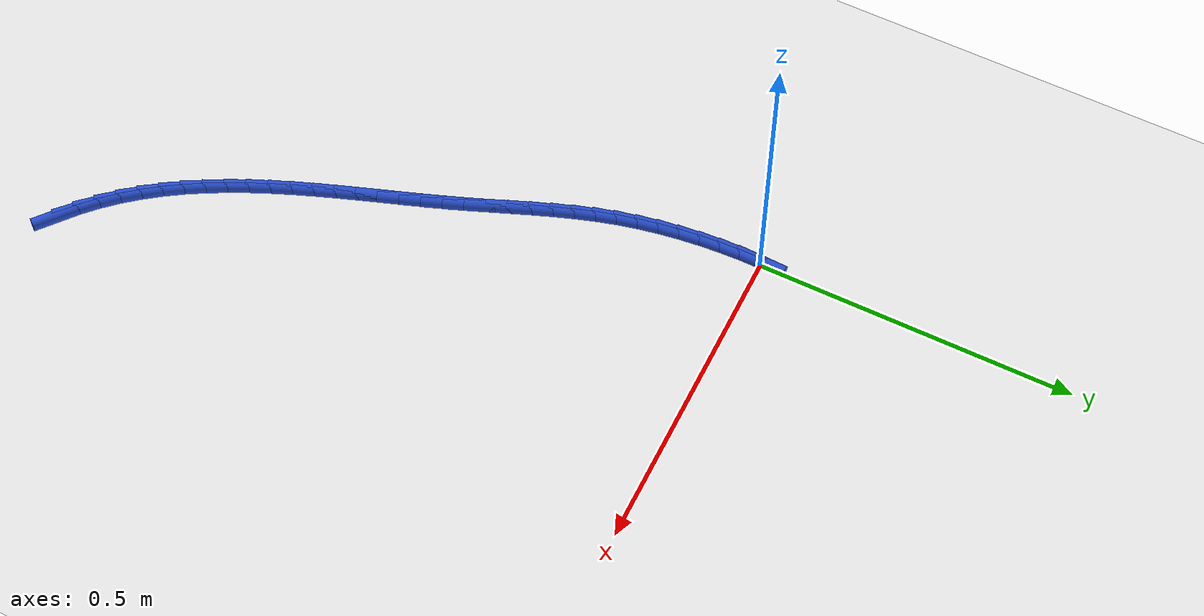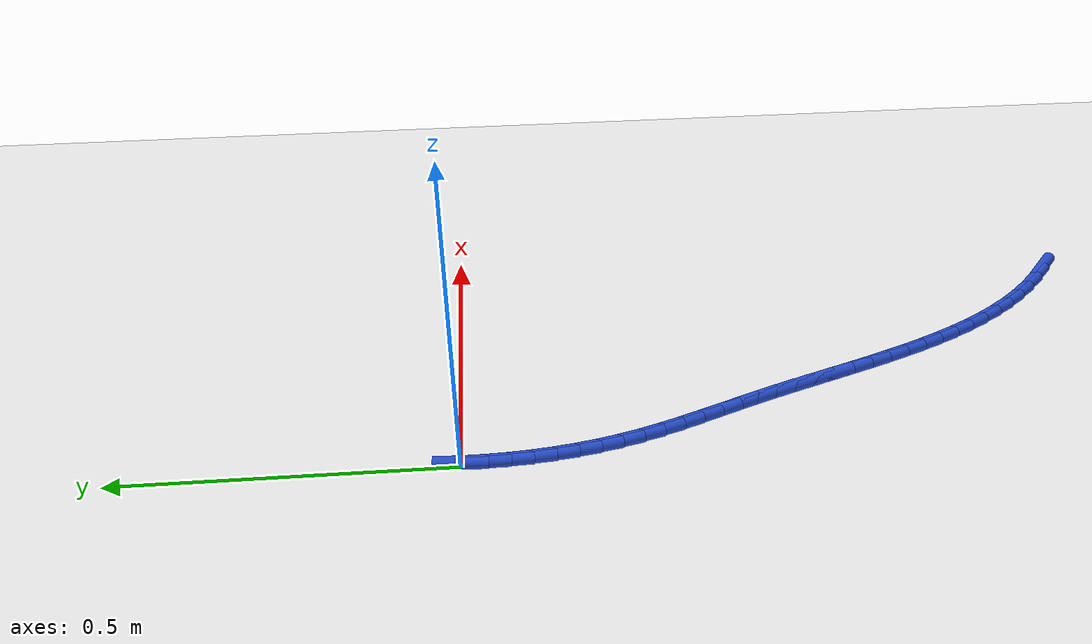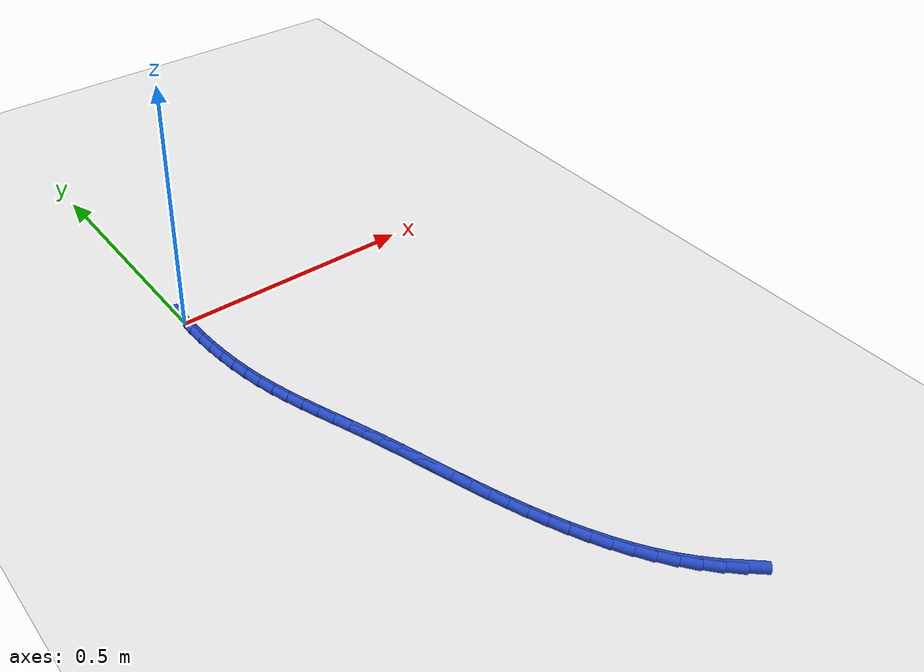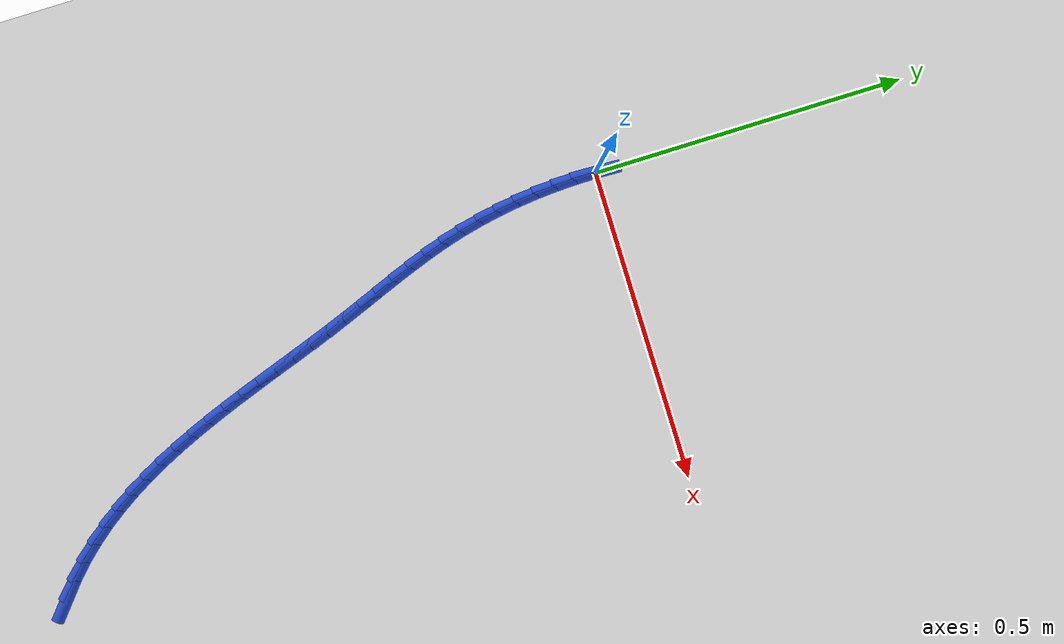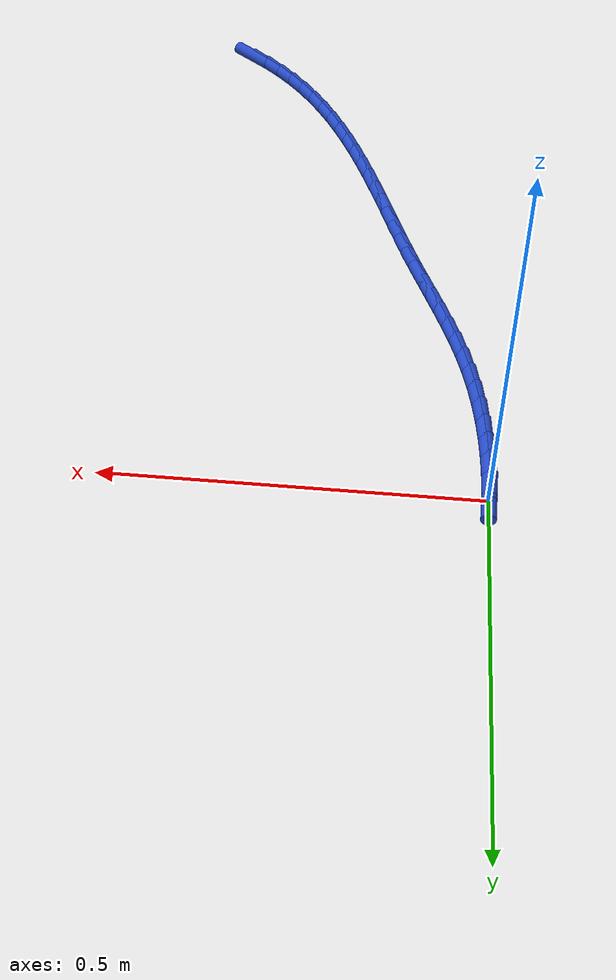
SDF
<sdf version="1.6">
 <world name="default">
  <model name="ground_plane">
   <static>1</static>
   <link name="link">
    <collision name="collision">
     <geometry><plane><normal>0 0 1</normal><size>100 100</size></plane></geometry>
     <surface><friction><ode><mu>100</mu><mu2>50</mu2></ode></friction></surface>
    </collision>
    <visual name="visual">
     <cast_shadows>0</cast_shadows>
     <geometry><plane><normal>0 0 1</normal><size>100 100</size></plane></geometry>
     <material>
      <script><uri>file://media/materials/scripts/gazebo.material</uri><name>Gazebo/WhiteGlow</name></script>
     </material>
    </visual>
   </link>
  </model>
  <model name="line">
   <link name="link_0">
    <pose>-4.336808689942018e-18 6.938893903907228e-18 0.01 0 1.57 1.5356205352324663</pose>
    <collision name="collision">
     <geometry><cylinder><radius>0.01</radius><length>0.08</length></cylinder></geometry>
    </collision>
    <visual name="visual">
     <material>
      <script><name>Gazebo/Blue</name><uri>file://media/materials/scripts/gazebo.material</uri></script>
     </material>
     <geometry><cylinder><radius>0.01</radius><length>0.08</length></cylinder></geometry>
    </visual>
   </link>
   <link name="link_237">
    <pose>0.39409569619626605 -0.9841624512168841 0.01 0 1.57 -0.6937515622070707</pose>
    <collision name="collision">
     <geometry><cylinder><radius>0.01</radius><length>0.08</length></cylinder></geometry>
    </collision>
    <visual name="visual">
     <material>
      <script><name>Gazebo/Blue</name><uri>file://media/materials/scripts/gazebo.material</uri></script>
     </material>
     <geometry><cylinder><radius>0.01</radius><length>0.08</length></cylinder></geometry>
    </visual>
   </link>
   <link name="link_238">
    <pose>0.3684211393285367 -0.9628098780210407 0.01 0 1.57 -0.7636069003416031</pose>
    <collision name="collision">
     <geometry><cylinder><radius>0.01</radius><length>0.08</length></cylinder></geometry>
    </collision>
    <visual name="visual">
     <material>
      <script><name>Gazebo/Blue</name><uri>file://media/materials/scripts/gazebo.material</uri></script>
     </material>
     <geometry><cylinder><radius>0.01</radius><length>0.08</length></cylinder></geometry>
    </visual>
   </link>
   <link name="link_239">
    <pose>0.3446210377803962 -0.9400250809667385 0.01 0 1.57 -0.8298947986290818</pose>
    <collision name="collision">
     <geometry><cylinder><radius>0.01</radius><length>0.08</length></cylinder></geometry>
    </collision>
    <visual name="visual">
     <material>
      <script><name>Gazebo/Blue</name><uri>file://media/materials/scripts/gazebo.material</uri></script>
     </material>
     <geometry><cylinder><radius>0.01</radius><length>0.08</length></cylinder></geometry>
    </visual>
   </link>
   <link name="link_240">
    <pose>0.32256648358871876 -0.9159149990060419 0.01 0 1.57 -0.8918524899574651</pose>
    <collision name="collision">
     <geometry><cylinder><radius>0.01</radius><length>0.08</length></cylinder></geometry>
    </collision>
    <visual name="visual">
     <material>
      <script><name>Gazebo/Blue</name><uri>file://media/materials/scripts/gazebo.material</uri></script>
     </material>
     <geometry><cylinder><radius>0.01</radius><length>0.08</length></cylinder></geometry>
    </visual>
   </link>
   <link name="link_241">
    <pose>0.30212856879038125 -0.8905865710910169 0.01 0 1.57 -0.9489311849397634</pose>
    <collision name="collision">
     <geometry><cylinder><radius>0.01</radius><length>0.08</length></cylinder></geometry>
    </collision>
    <visual name="visual">
     <material>
      <script><name>Gazebo/Blue</name><uri>file://media/materials/scripts/gazebo.material</uri></script>
     </material>
     <geometry><cylinder><radius>0.01</radius><length>0.08</length></cylinder></geometry>
    </visual>
   </link>
   <link name="link_242">
    <pose>0.2831783854222581 -0.8641467361737278 0.01 0 1.57 -1.0007853563065618</pose>
    <collision name="collision">
     <geometry><cylinder><radius>0.01</radius><length>0.08</length></cylinder></geometry>
    </collision>
    <visual name="visual">
     <material>
      <script><name>Gazebo/Blue</name><uri>file://media/materials/scripts/gazebo.material</uri></script>
     </material>
     <geometry><cylinder><radius>0.01</radius><length>0.08</length></cylinder></geometry>
    </visual>
   </link>
   <link name="link_243">
    <pose>0.2655870255212258 -0.8367024332062406 0.01 0 1.57 -1.0472430674993347</pose>
    <collision name="collision">
     <geometry><cylinder><radius>0.01</radius><length>0.08</length></cylinder></geometry>
    </collision>
    <visual name="visual">
     <material>
      <script><name>Gazebo/Blue</name><uri>file://media/materials/scripts/gazebo.material</uri></script>
     </material>
     <geometry><cylinder><radius>0.01</radius><length>0.08</length></cylinder></geometry>
    </visual>
   </link>
   <link name="link_244">
    <pose>0.24922558112415893 -0.8083606011406193 0.01 0 1.57 -1.0882669608153301</pose>
    <collision name="collision">
     <geometry><cylinder><radius>0.01</radius><length>0.08</length></cylinder></geometry>
    </collision>
    <visual name="visual">
     <material>
      <script><name>Gazebo/Blue</name><uri>file://media/materials/scripts/gazebo.material</uri></script>
     </material>
     <geometry><cylinder><radius>0.01</radius><length>0.08</length></cylinder></geometry>
    </visual>
   </link>
   <link name="link_245">
    <pose>0.233965144267934 -0.7792281789289297 0.01 0 1.57 -1.1239137964237025</pose>
    <collision name="collision">
     <geometry><cylinder><radius>0.01</radius><length>0.08</length></cylinder></geometry>
    </collision>
    <visual name="visual">
     <material>
      <script><name>Gazebo/Blue</name><uri>file://media/materials/scripts/gazebo.material</uri></script>
     </material>
     <geometry><cylinder><radius>0.01</radius><length>0.08</length></cylinder></geometry>
    </visual>
   </link>
   <link name="link_246">
    <pose>0.21967680698942613 -0.7494121055232374 0.01 0 1.57 -1.15429764354089</pose>
    <collision name="collision">
     <geometry><cylinder><radius>0.01</radius><length>0.08</length></cylinder></geometry>
    </collision>
    <visual name="visual">
     <material>
      <script><name>Gazebo/Blue</name><uri>file://media/materials/scripts/gazebo.material</uri></script>
     </material>
     <geometry><cylinder><radius>0.01</radius><length>0.08</length></cylinder></geometry>
    </visual>
   </link>
   <link name="link_247">
    <pose>0.20623166132551032 -0.7190193198756055 0.01 0 1.57 -1.1795591845435844</pose>
    <collision name="collision">
     <geometry><cylinder><radius>0.01</radius><length>0.08</length></cylinder></geometry>
    </collision>
    <visual name="visual">
     <material>
      <script><name>Gazebo/Blue</name><uri>file://media/materials/scripts/gazebo.material</uri></script>
     </material>
     <geometry><cylinder><radius>0.01</radius><length>0.08</length></cylinder></geometry>
    </visual>
   </link>
   <link name="link_248">
    <pose>0.19350079931306308 -0.6881567609381016 0.01 0 1.57 -1.1998416745761276</pose>
    <collision name="collision">
     <geometry><cylinder><radius>0.01</radius><length>0.08</length></cylinder></geometry>
    </collision>
    <visual name="visual">
     <material>
      <script><name>Gazebo/Blue</name><uri>file://media/materials/scripts/gazebo.material</uri></script>
     </material>
     <geometry><cylinder><radius>0.01</radius><length>0.08</length></cylinder></geometry>
    </visual>
   </link>
   <link name="link_249">
    <pose>0.18135531298895907 -0.6569313676627885 0.01 0 1.57 -1.2152729814702645</pose>
    <collision name="collision">
     <geometry><cylinder><radius>0.01</radius><length>0.08</length></cylinder></geometry>
    </collision>
    <visual name="visual">
     <material>
      <script><name>Gazebo/Blue</name><uri>file://media/materials/scripts/gazebo.material</uri></script>
     </material>
     <geometry><cylinder><radius>0.01</radius><length>0.08</length></cylinder></geometry>
    </visual>
   </link>
   <link name="link_250">
    <pose>0.16966629439007458 -0.6254500790017333 0.01 0 1.57 -1.2259526479326173</pose>
    <collision name="collision">
     <geometry><cylinder><radius>0.01</radius><length>0.08</length></cylinder></geometry>
    </collision>
    <visual name="visual">
     <material>
      <script><name>Gazebo/Blue</name><uri>file://media/materials/scripts/gazebo.material</uri></script>
     </material>
     <geometry><cylinder><radius>0.01</radius><length>0.08</length></cylinder></geometry>
    </visual>
   </link>
   <link name="link_251">
    <pose>0.15830483555328453 -0.5938198339069994 0.01 0 1.57 -1.2319428492222266</pose>
    <collision name="collision">
     <geometry><cylinder><radius>0.01</radius><length>0.08</length></cylinder></geometry>
    </collision>
    <visual name="visual">
     <material>
      <script><name>Gazebo/Blue</name><uri>file://media/materials/scripts/gazebo.material</uri></script>
     </material>
     <geometry><cylinder><radius>0.01</radius><length>0.08</length></cylinder></geometry>
    </visual>
   </link>
   <link name="link_252">
    <pose>0.14714202851546504 -0.5621475713306534 0.01 0 1.57 -1.2332622827825124</pose>
    <collision name="collision">
     <geometry><cylinder><radius>0.01</radius><length>0.08</length></cylinder></geometry>
    </collision>
    <visual name="visual">
     <material>
      <script><name>Gazebo/Blue</name><uri>file://media/materials/scripts/gazebo.material</uri></script>
     </material>
     <geometry><cylinder><radius>0.01</radius><length>0.08</length></cylinder></geometry>
    </visual>
   </link>
   <link name="link_253">
    <pose>0.13604896531349103 -0.5305402302247588 0.01 0 1.57 -1.2298823040060993</pose>
    <collision name="collision">
     <geometry><cylinder><radius>0.01</radius><length>0.08</length></cylinder></geometry>
    </collision>
    <visual name="visual">
     <material>
      <script><name>Gazebo/Blue</name><uri>file://media/materials/scripts/gazebo.material</uri></script>
     </material>
     <geometry><cylinder><radius>0.01</radius><length>0.08</length></cylinder></geometry>
    </visual>
   </link>
   <link name="link_254">
    <pose>0.12489673798423871 -0.4991047495413825 0.01 0 1.57 -1.2217249548122644</pose>
    <collision name="collision">
     <geometry><cylinder><radius>0.01</radius><length>0.08</length></cylinder></geometry>
    </collision>
    <visual name="visual">
     <material>
      <script><name>Gazebo/Blue</name><uri>file://media/materials/scripts/gazebo.material</uri></script>
     </material>
     <geometry><cylinder><radius>0.01</radius><length>0.08</length></cylinder></geometry>
    </visual>
   </link>
   <link name="link_255">
    <pose>0.11355643856458296 -0.4679480682325877 0.01 0 1.57 -1.2087834082014606</pose>
    <collision name="collision">
     <geometry><cylinder><radius>0.01</radius><length>0.08</length></cylinder></geometry>
    </collision>
    <visual name="visual">
     <material>
      <script><name>Gazebo/Blue</name><uri>file://media/materials/scripts/gazebo.material</uri></script>
     </material>
     <geometry><cylinder><radius>0.01</radius><length>0.08</length></cylinder></geometry>
    </visual>
   </link>
   <link name="link_256">
    <pose>0.10190253044266627 -0.437174831106813 0.01 0 1.57 -1.1962614884524905</pose>
    <collision name="collision">
     <geometry><cylinder><radius>0.01</radius><length>0.08</length></cylinder></geometry>
    </collision>
    <visual name="visual">
     <material>
      <script><name>Gazebo/Blue</name><uri>file://media/materials/scripts/gazebo.material</uri></script>
     </material>
     <geometry><cylinder><radius>0.01</radius><length>0.08</length></cylinder></geometry>
    </visual>
   </link>
   <link name="link_257">
    <pose>0.08995802373293497 -0.40678859960895486 0.01 0 1.57 -1.191588480693906</pose>
    <collision name="collision">
     <geometry><cylinder><radius>0.01</radius><length>0.08</length></cylinder></geometry>
    </collision>
    <visual name="visual">
     <material>
      <script><name>Gazebo/Blue</name><uri>file://media/materials/scripts/gazebo.material</uri></script>
     </material>
     <geometry><cylinder><radius>0.01</radius><length>0.08</length></cylinder></geometry>
    </visual>
   </link>
   <link name="link_258">
    <pose>0.07794966894467663 -0.37665429352608526 0.01 0 1.57 -1.1954770855658305</pose>
    <collision name="collision">
     <geometry><cylinder><radius>0.01</radius><length>0.08</length></cylinder></geometry>
    </collision>
    <visual name="visual">
     <material>
      <script><name>Gazebo/Blue</name><uri>file://media/materials/scripts/gazebo.material</uri></script>
     </material>
     <geometry><cylinder><radius>0.01</radius><length>0.08</length></cylinder></geometry>
    </visual>
   </link>
   <link name="link_259">
    <pose>0.0661189732569153 -0.346626790998124 0.01 0 1.57 -1.2080412251241457</pose>
    <collision name="collision">
     <geometry><cylinder><radius>0.01</radius><length>0.08</length></cylinder></geometry>
    </collision>
    <visual name="visual">
     <material>
      <script><name>Gazebo/Blue</name><uri>file://media/materials/scripts/gazebo.material</uri></script>
     </material>
     <geometry><cylinder><radius>0.01</radius><length>0.08</length></cylinder></geometry>
    </visual>
   </link>
   <link name="link_260">
    <pose>0.054707443848673654 -0.31656097016498763 0.01 0 1.57 -1.229311056778966</pose>
    <collision name="collision">
     <geometry><cylinder><radius>0.01</radius><length>0.08</length></cylinder></geometry>
    </collision>
    <visual name="visual">
     <material>
      <script><name>Gazebo/Blue</name><uri>file://media/materials/scripts/gazebo.material</uri></script>
     </material>
     <geometry><cylinder><radius>0.01</radius><length>0.08</length></cylinder></geometry>
    </visual>
   </link>
   <link name="link_261">
    <pose>0.04395658789897571 -0.2863117091665963 0.01 0 1.57 -1.25920269133573</pose>
    <collision name="collision">
     <geometry><cylinder><radius>0.01</radius><length>0.08</length></cylinder></geometry>
    </collision>
    <visual name="visual">
     <material>
      <script><name>Gazebo/Blue</name><uri>file://media/materials/scripts/gazebo.material</uri></script>
     </material>
     <geometry><cylinder><radius>0.01</radius><length>0.08</length></cylinder></geometry>
    </visual>
   </link>
   <link name="link_262">
    <pose>0.03410791258684419 -0.2557338861428663 0.01 0 1.57 -1.2974601405153396</pose>
    <collision name="collision">
     <geometry><cylinder><radius>0.01</radius><length>0.08</length></cylinder></geometry>
    </collision>
    <visual name="visual">
     <material>
      <script><name>Gazebo/Blue</name><uri>file://media/materials/scripts/gazebo.material</uri></script>
     </material>
     <geometry><cylinder><radius>0.01</radius><length>0.08</length></cylinder></geometry>
    </visual>
   </link>
   <link name="link_263">
    <pose>0.02540261692734582 -0.2246827122610911 0.01 0 1.57 -1.3408183724080318</pose>
    <collision name="collision">
     <geometry><cylinder><radius>0.01</radius><length>0.08</length></cylinder></geometry>
    </collision>
    <visual name="visual">
     <material>
      <script><name>Gazebo/Blue</name><uri>file://media/materials/scripts/gazebo.material</uri></script>
     </material>
     <geometry><cylinder><radius>0.01</radius><length>0.08</length></cylinder></geometry>
    </visual>
   </link>
   <link name="link_264">
    <pose>0.01800711508279048 -0.19309421736477214 0.01 0 1.57 -1.3827250862877267</pose>
    <collision name="collision">
     <geometry><cylinder><radius>0.01</radius><length>0.08</length></cylinder></geometry>
    </collision>
    <visual name="visual">
     <material>
      <script><name>Gazebo/Blue</name><uri>file://media/materials/scripts/gazebo.material</uri></script>
     </material>
     <geometry><cylinder><radius>0.01</radius><length>0.08</length></cylinder></geometry>
    </visual>
   </link>
   <link name="link_265">
    <pose>0.011916065606501042 -0.1610900445658619 0.01 0 1.57 -1.4226604541941983</pose>
    <collision name="collision">
     <geometry><cylinder><radius>0.01</radius><length>0.08</length></cylinder></geometry>
    </collision>
    <visual name="visual">
     <material>
      <script><name>Gazebo/Blue</name><uri>file://media/materials/scripts/gazebo.material</uri></script>
     </material>
     <geometry><cylinder><radius>0.01</radius><length>0.08</length></cylinder></geometry>
    </visual>
   </link>
   <link name="link_266">
    <pose>0.007100108391361742 -0.12881779352057487 0.01 0 1.57 -1.4610225342366892</pose>
    <collision name="collision">
     <geometry><cylinder><radius>0.01</radius><length>0.08</length></cylinder></geometry>
    </collision>
    <visual name="visual">
     <material>
      <script><name>Gazebo/Blue</name><uri>file://media/materials/scripts/gazebo.material</uri></script>
     </material>
     <geometry><cylinder><radius>0.01</radius><length>0.08</length></cylinder></geometry>
    </visual>
   </link>
   <link name="link_267">
    <pose>0.003529883330257482 -0.09642506388512946 0.01 0 1.57 -1.4981971628048159</pose>
    <collision name="collision">
     <geometry><cylinder><radius>0.01</radius><length>0.08</length></cylinder></geometry>
    </collision>
    <visual name="visual">
     <material>
      <script><name>Gazebo/Blue</name><uri>file://media/materials/scripts/gazebo.material</uri></script>
     </material>
     <geometry><cylinder><radius>0.01</radius><length>0.08</length></cylinder></geometry>
    </visual>
   </link>
   <link name="link_268">
    <pose>0.0011760303160726938 -0.06405945531574099 0.01 0 1.57 -1.5345646313361185</pose>
    <collision name="collision">
     <geometry><cylinder><radius>0.01</radius><length>0.08</length></cylinder></geometry>
    </collision>
    <visual name="visual">
     <material>
      <script><name>Gazebo/Blue</name><uri>file://media/materials/scripts/gazebo.material</uri></script>
     </material>
     <geometry><cylinder><radius>0.01</radius><length>0.08</length></cylinder></geometry>
    </visual>
   </link>
   <link name="link_269">
    <pose>9.189241691973452e-06 -0.031868567468625014 0.01 0 1.57 -1.5705079786773872</pose>
    <collision name="collision">
     <geometry><cylinder><radius>0.01</radius><length>0.08</length></cylinder></geometry>
    </collision>
    <visual name="visual">
     <material>
      <script><name>Gazebo/Blue</name><uri>file://media/materials/scripts/gazebo.material</uri></script>
     </material>
     <geometry><cylinder><radius>0.01</radius><length>0.08</length></cylinder></geometry>
    </visual>
   </link>
  </model>
 </world>
</sdf>
